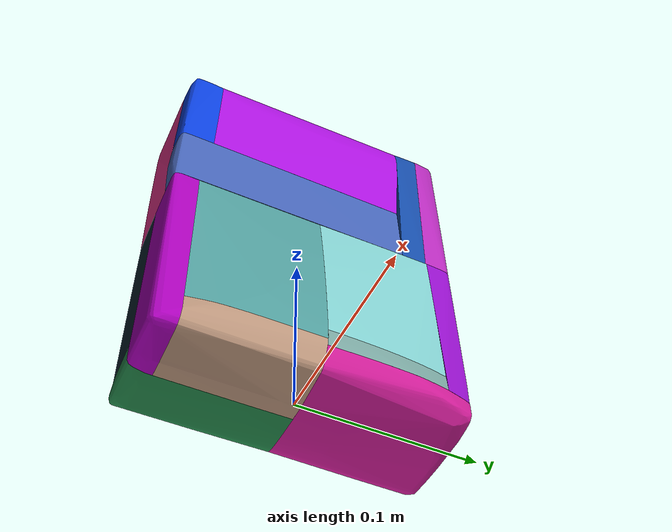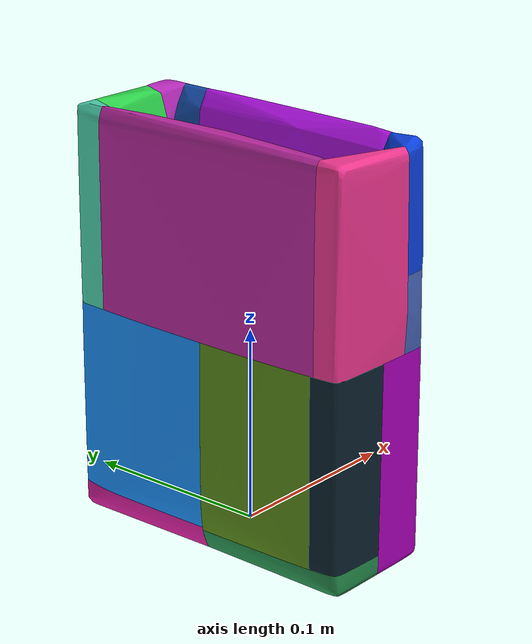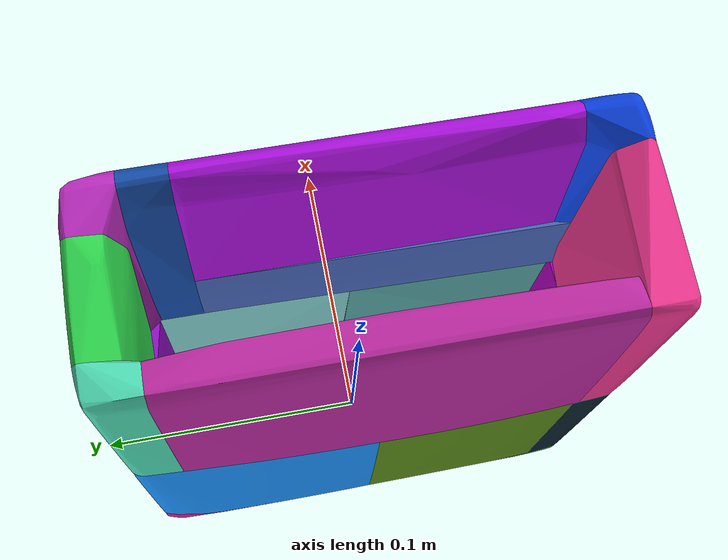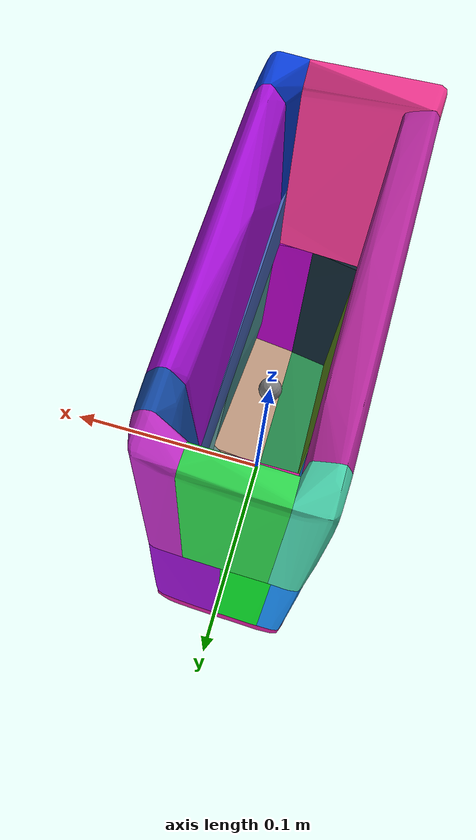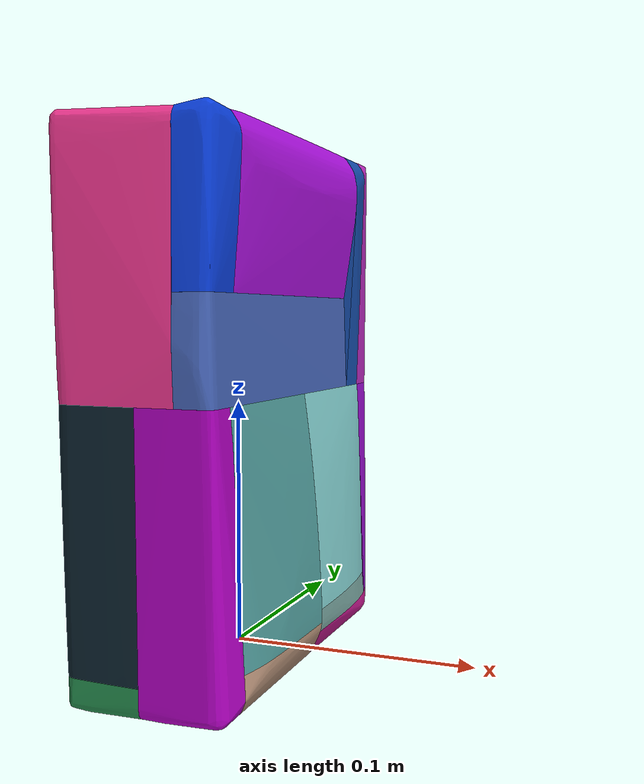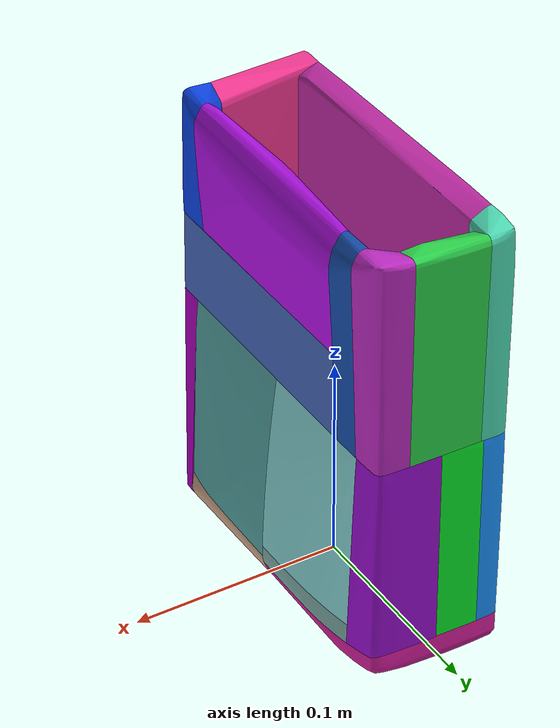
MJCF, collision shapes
<mujoco model="cheezit_box_open_thick">
  <compiler angle="radian" autolimits="true" meshdir="."/>

  <option timestep="0.01" integrator="Euler" iterations="5" ls_iterations="8">
    <flag eulerdamp="disable"/>
  </option>

  <default>
    <default class="cheezit_box">
      <mesh scale="0.001 0.001 0.001"/>
    </default>
    <default class="visual">
      <geom group="2" type="mesh" material="cheezit_box" contype="0" conaffinity="0"/>
    </default>
    <default class="collision">
      <geom group="3" type="mesh"/>
    </default>
  </default>
  <asset>
    <texture name="cheezit_box" type="2d" file="cheezit_box_open_thick.png"/>
    <material name="cheezit_box" texture="cheezit_box"/>
    <mesh file="cheezit_box_open_thick.obj" class="cheezit_box"/>
    <mesh file="cheezit_box_open_thick_collision_0.obj" class="cheezit_box"/>
    <mesh file="cheezit_box_open_thick_collision_1.obj" class="cheezit_box"/>
    <mesh file="cheezit_box_open_thick_collision_2.obj" class="cheezit_box"/>
    <mesh file="cheezit_box_open_thick_collision_3.obj" class="cheezit_box"/>
    <mesh file="cheezit_box_open_thick_collision_4.obj" class="cheezit_box"/>
    <mesh file="cheezit_box_open_thick_collision_5.obj" class="cheezit_box"/>
    <mesh file="cheezit_box_open_thick_collision_6.obj" class="cheezit_box"/>
    <mesh file="cheezit_box_open_thick_collision_7.obj" class="cheezit_box"/>
    <mesh file="cheezit_box_open_thick_collision_8.obj" class="cheezit_box"/>
    <mesh file="cheezit_box_open_thick_collision_9.obj" class="cheezit_box"/>
    <mesh file="cheezit_box_open_thick_collision_10.obj" class="cheezit_box"/>
    <mesh file="cheezit_box_open_thick_collision_11.obj" class="cheezit_box"/>
    <mesh file="cheezit_box_open_thick_collision_12.obj" class="cheezit_box"/>
    <mesh file="cheezit_box_open_thick_collision_13.obj" class="cheezit_box"/>
    <mesh file="cheezit_box_open_thick_collision_14.obj" class="cheezit_box"/>
    <mesh file="cheezit_box_open_thick_collision_15.obj" class="cheezit_box"/>
    <mesh file="cheezit_box_open_thick_collision_16.obj" class="cheezit_box"/>
    <mesh file="cheezit_box_open_thick_collision_17.obj" class="cheezit_box"/>
    <mesh file="cheezit_box_open_thick_collision_18.obj" class="cheezit_box"/>
    <mesh file="cheezit_box_open_thick_collision_19.obj" class="cheezit_box"/>
    <mesh file="cheezit_box_open_thick_collision_20.obj" class="cheezit_box"/>
  </asset>

  <worldbody>
    <light cutoff="100" diffuse="1 1 1" dir="-0 0 -1.3" directional="true" exponent="1" pos="0 0 1.3" specular=".1 .1 .1"/>
    <site name="reference" pos="0 0 0.1" quat="1 0 0 0"/>

    <body name="cheezit_box" pos="0 0 0.1" gravcomp="1">
      <site name="cheezit_box"/>
      <freejoint name="cheezit_box_freejoint"/>
      <geom mesh="cheezit_box_open_thick" class="visual"/>
      <geom mesh="cheezit_box_open_thick_collision_0" rgba="0.9598351979777219 0.21828140230730353 0.5781164887185586 1" class="collision"/>
      <geom mesh="cheezit_box_open_thick_collision_1" rgba="0.08731892199668267 0.30671382527347757 0.6765888329889518 1" class="collision"/>
      <geom mesh="cheezit_box_open_thick_collision_2" rgba="0.7392578048714098 0.17037823992903456 0.7582285413727105 1" class="collision"/>
      <geom mesh="cheezit_box_open_thick_collision_3" rgba="0.14419338221113764 0.5444416584300402 0.2998644895817927 1" class="collision"/>
      <geom mesh="cheezit_box_open_thick_collision_4" rgba="0.8277067390760935 0.11293077474627122 0.6060264476010601 1" class="collision"/>
      <geom mesh="cheezit_box_open_thick_collision_5" rgba="0.5272019120373138 0.836052916540745 0.8351452106810141 1" class="collision"/>
      <geom mesh="cheezit_box_open_thick_collision_6" rgba="0.6908139501909155 0.0018190112216436294 0.7507876926514188 1" class="collision"/>
      <geom mesh="cheezit_box_open_thick_collision_7" rgba="0.28297900669997467 0.4063016726186762 0.7370033293338043 1" class="collision"/>
      <geom mesh="cheezit_box_open_thick_collision_8" rgba="0.7430089686028275 0.16378559849096652 0.638588507003856 1" class="collision"/>
      <geom mesh="cheezit_box_open_thick_collision_9" rgba="0.04388590620903399 0.2585239117229253 0.8877942824412804 1" class="collision"/>
      <geom mesh="cheezit_box_open_thick_collision_10" rgba="0.045389873693031935 0.9243469229050277 0.1702627957095747 1" class="collision"/>
      <geom mesh="cheezit_box_open_thick_collision_11" rgba="0.7477340479463184 0.5986424757197213 0.4964345375848057 1" class="collision"/>
      <geom mesh="cheezit_box_open_thick_collision_12" rgba="0.30327584703265154 0.8570848364736571 0.7024962123905379 1" class="collision"/>
      <geom mesh="cheezit_box_open_thick_collision_13" rgba="0.17679365224568233 0.8331885624580128 0.29835913352096366 1" class="collision"/>
      <geom mesh="cheezit_box_open_thick_collision_14" rgba="0.04951802269661021 0.13681047387573253 0.18313451997146235 1" class="collision"/>
      <geom mesh="cheezit_box_open_thick_collision_15" rgba="0.6033448941302931 0.05963261553016297 0.8177430891595479 1" class="collision"/>
      <geom mesh="cheezit_box_open_thick_collision_16" rgba="0.1044292824298153 0.5773885755673019 0.9998781395965087 1" class="collision"/>
      <geom mesh="cheezit_box_open_thick_collision_17" rgba="0.3599402455010311 0.5603054587923968 0.10219923150674493 1" class="collision"/>
      <geom mesh="cheezit_box_open_thick_collision_18" rgba="0.3284474664333451 0.6369228408578419 0.6329371852195544 1" class="collision"/>
      <geom mesh="cheezit_box_open_thick_collision_19" rgba="0.6880444122189779 0.0704108211919876 0.8875032591604601 1" class="collision"/>
      <geom mesh="cheezit_box_open_thick_collision_20" rgba="0.4885178635974472 0.6645517835336953 0.6416949981454564 1" class="collision"/>
    </body>
  </worldbody>
</mujoco>
